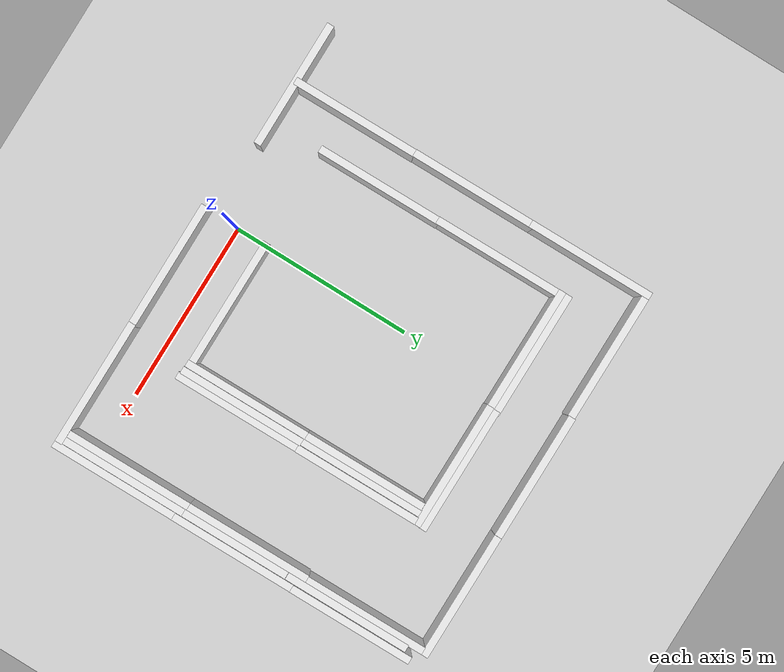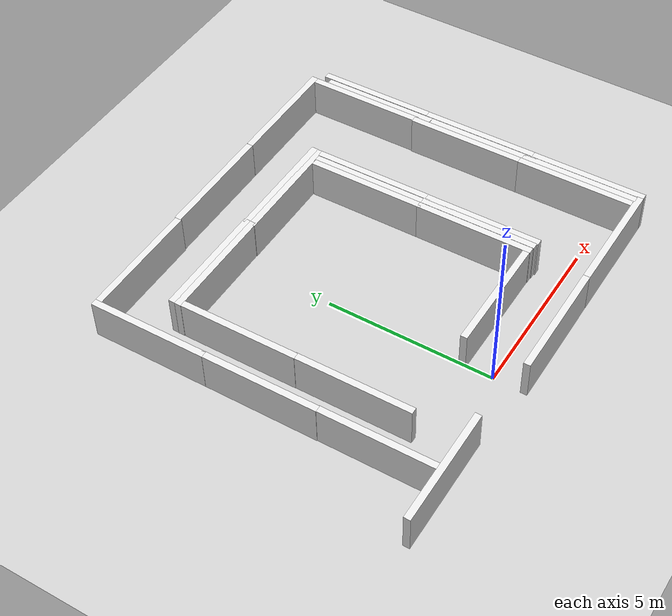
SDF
<?xml version="1.0" ?>

<sdf version="1.6">
  <world name="empty">
    <physics name="1ms" type="ignored">
      <max_step_size>0.001</max_step_size>
      <real_time_factor>1.0</real_time_factor>
    </physics>
    <plugin
      filename="gz-sim-physics-system"
      name="gz::sim::systems::Physics">
    </plugin>
    <plugin
      filename="gz-sim-user-commands-system"
      name="gz::sim::systems::UserCommands">
    </plugin>
    <plugin
      filename="gz-sim-scene-broadcaster-system"
      name="gz::sim::systems::SceneBroadcaster">
    </plugin>
    <plugin
      filename="gz-sim-contact-system"
      name="gz::sim::systems::Contact">
    </plugin>

    <plugin
      filename="gz-sim-sensors-system"
      name="gz::sim::systems::Sensors">
      <render_engine>ogre2</render_engine>
    </plugin>
    <plugin
      filename="gz-sim-imu-system"
      name="gz::sim::systems::Imu">
    </plugin>
    <plugin
      filename="gz-sim-navsat-system"
      name="gz::sim::systems::NavSat">
    </plugin>
    <!-- Set the coordinates for the world origin -->
    <spherical_coordinates>
      <surface_model>EARTH_WGS84</surface_model>
      <world_frame_orientation>ENU</world_frame_orientation>
      <latitude_deg>47.478950</latitude_deg>
      <longitude_deg>19.057785</longitude_deg>
      <elevation>0</elevation>
      <heading_deg>0</heading_deg>
    </spherical_coordinates>

    <light type="directional" name="sun">
      <cast_shadows>true</cast_shadows>
      <pose>0 0 10 0 0 0</pose>
      <diffuse>0.8 0.8 0.8 1</diffuse>
      <specular>0.2 0.2 0.2 1</specular>
      <attenuation>
        <range>1000</range>
        <constant>0.9</constant>
        <linear>0.01</linear>
        <quadratic>0.001</quadratic>
      </attenuation>
      <direction>-0.5 0.1 -0.9</direction>
    </light>

    <gravity>0 0 -9.8000000000000007</gravity>
    <magnetic_field>5.5644999999999998e-06 2.2875799999999999e-05 -4.2388400000000002e-05</magnetic_field>
    <atmosphere type='adiabatic'/>
    <scene>
      <ambient>0.400000006 0.400000006 0.400000006 1</ambient>
      <background>0.699999988 0.699999988 0.699999988 1</background>
      <shadows>true</shadows>
    </scene>

    <model name="ground_plane">
      <static>true</static>
      <link name="link">
        <collision name="collision">
          <geometry>
            <plane>
              <normal>0 0 1</normal>
              <size>100 100</size>
            </plane>
          </geometry>
          <surface>
            <friction>
              <ode>
                <mu>50</mu>
              </ode>
            </friction>
            <bounce/>
            <contact/>
          </surface>
        </collision>
        <visual name="visual">
          <geometry>
            <plane>
              <normal>0 0 1</normal>
              <size>100 100</size>
            </plane>
          </geometry>
          <material>
            <ambient>0.8 0.8 0.8 1</ambient>
            <diffuse>0.8 0.8 0.8 1</diffuse>
            <specular>0.8 0.8 0.8 1</specular>
          </material>
        </visual>
      </link>
    </model>
    <model name='grey_wall_1'>
      <static>true</static>
      <link name='link'>
        <pose>0 0 1.3999999999999999 0 0 0</pose>
        <collision name='collision'>
          <geometry>
            <box>
              <size>3.5 0.20000000000000001 1.2</size>
            </box>
          </geometry>
          <surface>
            <friction>
              <ode/>
            </friction>
            <bounce/>
            <contact/>
          </surface>
        </collision>
        <visual name='visual'>
          <cast_shadows>false</cast_shadows>
          <geometry>
            <box>
              <size>3.5 0.20000000000000001 1.2</size>
            </box>
          </geometry>
          <material>
            <ambient>0.800000012 0.800000012 0.800000012 1</ambient>
            <diffuse>0.899999976 0.899999976 0.899999976 1</diffuse>
            <specular>0.100000001 0.100000001 0.100000001 1</specular>
          </material>
        </visual>
      </link>
      <pose>5.1656638094872669 -0.89525418829218406 -0.79650002717971802 0 0 0</pose>
      <self_collide>false</self_collide>
    </model>
    <model name='grey_wall_2'>
      <static>true</static>
      <link name='link'>
        <pose>0 0 1.3999999999999999 0 0 0</pose>
        <collision name='collision'>
          <geometry>
            <box>
              <size>3.5 0.20000000000000001 1.2</size>
            </box>
          </geometry>
          <surface>
            <friction>
              <ode/>
            </friction>
            <bounce/>
            <contact/>
          </surface>
        </collision>
        <visual name='visual'>
          <cast_shadows>false</cast_shadows>
          <geometry>
            <box>
              <size>3.5 0.20000000000000001 1.2</size>
            </box>
          </geometry>
          <material>
            <ambient>0.800000012 0.800000012 0.800000012 1</ambient>
            <diffuse>0.899999976 0.899999976 0.899999976 1</diffuse>
            <specular>0.100000001 0.100000001 0.100000001 1</specular>
          </material>
        </visual>
      </link>
      <pose>1.6882715194020816 0.88620328823797312 -0.79650002717971802 0 0 0</pose>
      <self_collide>false</self_collide>
    </model>
    <model name='grey_wall_3'>
      <static>true</static>
      <link name='link'>
        <pose>0 0 1.3999999999999999 0 0 0</pose>
        <collision name='collision'>
          <geometry>
            <box>
              <size>3.5 0.20000000000000001 1.2</size>
            </box>
          </geometry>
          <surface>
            <friction>
              <ode/>
            </friction>
            <bounce/>
            <contact/>
          </surface>
        </collision>
        <visual name='visual'>
          <cast_shadows>false</cast_shadows>
          <geometry>
            <box>
              <size>3.5 0.20000000000000001 1.2</size>
            </box>
          </geometry>
          <material>
            <ambient>0.800000012 0.800000012 0.800000012 1</ambient>
            <diffuse>0.899999976 0.899999976 0.899999976 1</diffuse>
            <specular>0.100000001 0.100000001 0.100000001 1</specular>
          </material>
        </visual>
      </link>
      <pose>1.7170979027507753 -0.89997675056831605 -0.79650002717971802 0 0 0.0031365398844228468</pose>
      <self_collide>false</self_collide>
    </model>
    <model name='grey_wall_4'>
      <static>true</static>
      <link name='link'>
        <pose>0 0 1.3999999999999999 0 0 0</pose>
        <collision name='collision'>
          <geometry>
            <box>
              <size>3.5 0.20000000000000001 1.2</size>
            </box>
          </geometry>
          <surface>
            <friction>
              <ode/>
            </friction>
            <bounce/>
            <contact/>
          </surface>
        </collision>
        <visual name='visual'>
          <cast_shadows>false</cast_shadows>
          <geometry>
            <box>
              <size>3.5 0.20000000000000001 1.2</size>
            </box>
          </geometry>
          <material>
            <ambient>0.800000012 0.800000012 0.800000012 1</ambient>
            <diffuse>0.899999976 0.899999976 0.899999976 1</diffuse>
            <specular>0.100000001 0.100000001 0.100000001 1</specular>
          </material>
        </visual>
      </link>
      <pose>3.521831637143559 2.5270021740473432 -0.79650002717971802 0 0 1.5797899017080024</pose>
      <self_collide>false</self_collide>
    </model>
    <model name='grey_wall_5'>
      <static>true</static>
      <link name='link'>
        <pose>0 0 1.3999999999999999 0 0 0</pose>
        <collision name='collision'>
          <geometry>
            <box>
              <size>3.5 0.20000000000000001 1.2</size>
            </box>
          </geometry>
          <surface>
            <friction>
              <ode/>
            </friction>
            <bounce/>
            <contact/>
          </surface>
        </collision>
        <visual name='visual'>
          <cast_shadows>false</cast_shadows>
          <geometry>
            <box>
              <size>3.5 0.20000000000000001 1.2</size>
            </box>
          </geometry>
          <material>
            <ambient>0.800000012 0.800000012 0.800000012 1</ambient>
            <diffuse>0.899999976 0.899999976 0.899999976 1</diffuse>
            <specular>0.100000001 0.100000001 0.100000001 1</specular>
          </material>
        </visual>
      </link>
      <pose>6.9780288436318285 0.75720864567960167 -0.79650002717971802 0 0 1.5797899017080024</pose>
      <self_collide>false</self_collide>
    </model>
    <model name='grey_wall_6'>
      <static>true</static>
      <link name='link'>
        <pose>0 0 1.3999999999999999 0 0 0</pose>
        <collision name='collision'>
          <geometry>
            <box>
              <size>3.5 0.20000000000000001 1.2</size>
            </box>
          </geometry>
          <surface>
            <friction>
              <ode/>
            </friction>
            <bounce/>
            <contact/>
          </surface>
        </collision>
        <visual name='visual'>
          <cast_shadows>false</cast_shadows>
          <geometry>
            <box>
              <size>3.5 0.20000000000000001 1.2</size>
            </box>
          </geometry>
          <material>
            <ambient>0.800000012 0.800000012 0.800000012 1</ambient>
            <diffuse>0.899999976 0.899999976 0.899999976 1</diffuse>
            <specular>0.100000001 0.100000001 0.100000001 1</specular>
          </material>
        </visual>
      </link>
      <pose>6.9503072214789245 4.211480366024178 -0.79650002717971802 0 0 1.5797899017080024</pose>
      <self_collide>false</self_collide>
    </model>
    <model name='grey_wall_7'>
      <static>true</static>
      <link name='link'>
        <pose>0 0 1.3999999999999999 0 0 0</pose>
        <collision name='collision'>
          <geometry>
            <box>
              <size>3.5 0.20000000000000001 1.2</size>
            </box>
          </geometry>
          <surface>
            <friction>
              <ode/>
            </friction>
            <bounce/>
            <contact/>
          </surface>
        </collision>
        <visual name='visual'>
          <cast_shadows>false</cast_shadows>
          <geometry>
            <box>
              <size>3.5 0.20000000000000001 1.2</size>
            </box>
          </geometry>
          <material>
            <ambient>0.800000012 0.800000012 0.800000012 1</ambient>
            <diffuse>0.899999976 0.899999976 0.899999976 1</diffuse>
            <specular>0.100000001 0.100000001 0.100000001 1</specular>
          </material>
        </visual>
      </link>
      <pose>3.4914885092167935 5.9361764839907645 -0.79650002717971802 0 0 1.5797899017080024</pose>
      <self_collide>false</self_collide>
    </model>
    <model name='grey_wall_8'>
      <static>true</static>
      <link name='link'>
        <pose>0 0 1.3999999999999999 0 0 0</pose>
        <collision name='collision'>
          <geometry>
            <box>
              <size>3.5 0.20000000000000001 1.2</size>
            </box>
          </geometry>
          <surface>
            <friction>
              <ode/>
            </friction>
            <bounce/>
            <contact/>
          </surface>
        </collision>
        <visual name='visual'>
          <cast_shadows>false</cast_shadows>
          <geometry>
            <box>
              <size>3.5 0.20000000000000001 1.2</size>
            </box>
          </geometry>
          <material>
            <ambient>0.800000012 0.800000012 0.800000012 1</ambient>
            <diffuse>0.899999976 0.899999976 0.899999976 1</diffuse>
            <specular>0.100000001 0.100000001 0.100000001 1</specular>
          </material>
        </visual>
      </link>
      <pose>6.9236139831597887 7.6762318874897897 -0.79650002717971802 0 0 1.5797899017080024</pose>
      <self_collide>false</self_collide>
    </model>
    <model name='grey_wall_9'>
      <static>true</static>
      <link name='link'>
        <pose>0 0 1.3999999999999999 0 0 0</pose>
        <collision name='collision'>
          <geometry>
            <box>
              <size>3.5 0.20000000000000001 1.2</size>
            </box>
          </geometry>
          <surface>
            <friction>
              <ode/>
            </friction>
            <bounce/>
            <contact/>
          </surface>
        </collision>
        <visual name='visual'>
          <cast_shadows>false</cast_shadows>
          <geometry>
            <box>
              <size>3.5 0.20000000000000001 1.2</size>
            </box>
          </geometry>
          <material>
            <ambient>0.800000012 0.800000012 0.800000012 1</ambient>
            <diffuse>0.899999976 0.899999976 0.899999976 1</diffuse>
            <specular>0.100000001 0.100000001 0.100000001 1</specular>
          </material>
        </visual>
      </link>
      <pose>3.7273569803112894 2.5117239405565872 -0.79650002717971802 0 0 1.5797899017080024</pose>
      <self_collide>false</self_collide>
    </model>
    <model name='grey_wall_10'>
      <static>true</static>
      <link name='link'>
        <pose>0 0 1.3999999999999999 0 0 0</pose>
        <collision name='collision'>
          <geometry>
            <box>
              <size>3.5 0.20000000000000001 1.2</size>
            </box>
          </geometry>
          <surface>
            <friction>
              <ode/>
            </friction>
            <bounce/>
            <contact/>
          </surface>
        </collision>
        <visual name='visual'>
          <cast_shadows>false</cast_shadows>
          <geometry>
            <box>
              <size>3.5 0.20000000000000001 1.2</size>
            </box>
          </geometry>
          <material>
            <ambient>0.800000012 0.800000012 0.800000012 1</ambient>
            <diffuse>0.899999976 0.899999976 0.899999976 1</diffuse>
            <specular>0.100000001 0.100000001 0.100000001 1</specular>
          </material>
        </visual>
      </link>
      <pose>3.6702869499023638 5.9562257604994588 -0.79650002717971802 0 0 1.5797899017080024</pose>
      <self_collide>false</self_collide>
    </model>
    <model name='grey_wall_11'>
      <static>true</static>
      <link name='link'>
        <pose>0 0 1.3999999999999999 0 0 0</pose>
        <collision name='collision'>
          <geometry>
            <box>
              <size>3.5 0.20000000000000001 1.2</size>
            </box>
          </geometry>
          <surface>
            <friction>
              <ode/>
            </friction>
            <bounce/>
            <contact/>
          </surface>
        </collision>
        <visual name='visual'>
          <cast_shadows>false</cast_shadows>
          <geometry>
            <box>
              <size>3.5 0.20000000000000001 1.2</size>
            </box>
          </geometry>
          <material>
            <ambient>0.800000012 0.800000012 0.800000012 1</ambient>
            <diffuse>0.899999976 0.899999976 0.899999976 1</diffuse>
            <specular>0.100000001 0.100000001 0.100000001 1</specular>
          </material>
        </visual>
      </link>
      <pose>3.9068985825459634 2.4771023106451944 -0.79650002717971802 0 0 1.5797899017080024</pose>
      <self_collide>false</self_collide>
    </model>
    <model name='grey_wall_12'>
      <static>true</static>
      <link name='link'>
        <pose>0 0 1.3999999999999999 0 0 0</pose>
        <collision name='collision'>
          <geometry>
            <box>
              <size>3.5 0.20000000000000001 1.2</size>
            </box>
          </geometry>
          <surface>
            <friction>
              <ode/>
            </friction>
            <bounce/>
            <contact/>
          </surface>
        </collision>
        <visual name='visual'>
          <cast_shadows>false</cast_shadows>
          <geometry>
            <box>
              <size>3.5 0.20000000000000001 1.2</size>
            </box>
          </geometry>
          <material>
            <ambient>0.800000012 0.800000012 0.800000012 1</ambient>
            <diffuse>0.899999976 0.899999976 0.899999976 1</diffuse>
            <specular>0.100000001 0.100000001 0.100000001 1</specular>
          </material>
        </visual>
      </link>
      <pose>3.8806576114981235 5.9783411956893611 -0.79650002717971802 0 0 1.5797899017080024</pose>
      <self_collide>false</self_collide>
    </model>
    <model name='grey_wall_13'>
      <static>true</static>
      <link name='link'>
        <pose>0 0 1.3999999999999999 0 0 0</pose>
        <collision name='collision'>
          <geometry>
            <box>
              <size>3.5 0.20000000000000001 1.2</size>
            </box>
          </geometry>
          <surface>
            <friction>
              <ode/>
            </friction>
            <bounce/>
            <contact/>
          </surface>
        </collision>
        <visual name='visual'>
          <cast_shadows>false</cast_shadows>
          <geometry>
            <box>
              <size>3.5 0.20000000000000001 1.2</size>
            </box>
          </geometry>
          <material>
            <ambient>0.800000012 0.800000012 0.800000012 1</ambient>
            <diffuse>0.899999976 0.899999976 0.899999976 1</diffuse>
            <specular>0.100000001 0.100000001 0.100000001 1</specular>
          </material>
        </visual>
      </link>
      <pose>6.7722068895490164 0.92519141544699135 -0.79650002717971802 0 0 1.5797899017080024</pose>
      <self_collide>false</self_collide>
    </model>
    <model name='grey_wall_14'>
      <static>true</static>
      <link name='link'>
        <pose>0 0 1.3999999999999999 0 0 0</pose>
        <collision name='collision'>
          <geometry>
            <box>
              <size>3.5 0.20000000000000001 1.2</size>
            </box>
          </geometry>
          <surface>
            <friction>
              <ode/>
            </friction>
            <bounce/>
            <contact/>
          </surface>
        </collision>
        <visual name='visual'>
          <cast_shadows>false</cast_shadows>
          <geometry>
            <box>
              <size>3.5 0.20000000000000001 1.2</size>
            </box>
          </geometry>
          <material>
            <ambient>0.800000012 0.800000012 0.800000012 1</ambient>
            <diffuse>0.899999976 0.899999976 0.899999976 1</diffuse>
            <specular>0.100000001 0.100000001 0.100000001 1</specular>
          </material>
        </visual>
      </link>
      <pose>6.7432948967610518 3.9427501308672297 -0.79650002717971802 0 0 1.5797899017080024</pose>
      <self_collide>false</self_collide>
    </model>
    <model name='grey_wall_15'>
      <static>true</static>
      <link name='link'>
        <pose>0 0 1.3999999999999999 0 0 0</pose>
        <collision name='collision'>
          <geometry>
            <box>
              <size>3.5 0.20000000000000001 1.2</size>
            </box>
          </geometry>
          <surface>
            <friction>
              <ode/>
            </friction>
            <bounce/>
            <contact/>
          </surface>
        </collision>
        <visual name='visual'>
          <cast_shadows>false</cast_shadows>
          <geometry>
            <box>
              <size>3.5 0.20000000000000001 1.2</size>
            </box>
          </geometry>
          <material>
            <ambient>0.800000012 0.800000012 0.800000012 1</ambient>
            <diffuse>0.899999976 0.899999976 0.899999976 1</diffuse>
            <specular>0.100000001 0.100000001 0.100000001 1</specular>
          </material>
        </visual>
      </link>
      <pose>6.7099269190659978 7.4506081681151493 -0.79650002717971802 0 0 1.5797899017080024</pose>
      <self_collide>false</self_collide>
    </model>
    <model name='grey_wall_16'>
      <static>true</static>
      <link name='link'>
        <pose>0 0 1.3999999999999999 0 0 0</pose>
        <collision name='collision'>
          <geometry>
            <box>
              <size>3.5 0.20000000000000001 1.2</size>
            </box>
          </geometry>
          <surface>
            <friction>
              <ode/>
            </friction>
            <bounce/>
            <contact/>
          </surface>
        </collision>
        <visual name='visual'>
          <cast_shadows>false</cast_shadows>
          <geometry>
            <box>
              <size>3.5 0.20000000000000001 1.2</size>
            </box>
          </geometry>
          <material>
            <ambient>0.800000012 0.800000012 0.800000012 1</ambient>
            <diffuse>0.899999976 0.899999976 0.899999976 1</diffuse>
            <specular>0.100000001 0.100000001 0.100000001 1</specular>
          </material>
        </visual>
      </link>
      <pose>6.5758289455464709 0.95628041037775535 -0.79650002717971802 0 0 1.5797899017080024</pose>
      <self_collide>false</self_collide>
    </model>
    <model name='grey_wall_17'>
      <static>true</static>
      <link name='link'>
        <pose>0 0 1.3999999999999999 0 0 0</pose>
        <collision name='collision'>
          <geometry>
            <box>
              <size>3.5 0.20000000000000001 1.2</size>
            </box>
          </geometry>
          <surface>
            <friction>
              <ode/>
            </friction>
            <bounce/>
            <contact/>
          </surface>
        </collision>
        <visual name='visual'>
          <cast_shadows>false</cast_shadows>
          <geometry>
            <box>
              <size>3.5 0.20000000000000001 1.2</size>
            </box>
          </geometry>
          <material>
            <ambient>0.800000012 0.800000012 0.800000012 1</ambient>
            <diffuse>0.899999976 0.899999976 0.899999976 1</diffuse>
            <specular>0.100000001 0.100000001 0.100000001 1</specular>
          </material>
        </visual>
      </link>
      <pose>6.5453374079758788 4.4264452306406588 -0.79650002717971802 0 0 1.5797899017080024</pose>
      <self_collide>false</self_collide>
    </model>
    <model name='grey_wall_18'>
      <static>true</static>
      <link name='link'>
        <pose>0 0 1.3999999999999999 0 0 0</pose>
        <collision name='collision'>
          <geometry>
            <box>
              <size>3.5 0.20000000000000001 1.2</size>
            </box>
          </geometry>
          <surface>
            <friction>
              <ode/>
            </friction>
            <bounce/>
            <contact/>
          </surface>
        </collision>
        <visual name='visual'>
          <cast_shadows>false</cast_shadows>
          <geometry>
            <box>
              <size>3.5 0.20000000000000001 1.2</size>
            </box>
          </geometry>
          <material>
            <ambient>0.800000012 0.800000012 0.800000012 1</ambient>
            <diffuse>0.899999976 0.899999976 0.899999976 1</diffuse>
            <specular>0.100000001 0.100000001 0.100000001 1</specular>
          </material>
        </visual>
      </link>
      <pose>6.5403673366322828 7.8334372755448616 -0.79650002717971802 0 0 1.5797899017080024</pose>
      <self_collide>false</self_collide>
    </model>
    <model name='grey_wall_1_1'>
      <static>true</static>
      <link name='link'>
        <pose>0 0 1.3999999999999999 0 0 0</pose>
        <collision name='collision'>
          <geometry>
            <box>
              <size>3.5 0.20000000000000001 1.2</size>
            </box>
          </geometry>
          <surface>
            <friction>
              <ode/>
            </friction>
            <bounce/>
            <contact/>
          </surface>
        </collision>
        <visual name='visual'>
          <cast_shadows>false</cast_shadows>
          <geometry>
            <box>
              <size>3.5 0.20000000000000001 1.2</size>
            </box>
          </geometry>
          <material>
            <ambient>0.800000012 0.800000012 0.800000012 1</ambient>
            <diffuse>0.899999976 0.899999976 0.899999976 1</diffuse>
            <specular>0.100000001 0.100000001 0.100000001 1</specular>
          </material>
        </visual>
      </link>
      <pose>2.2101724610336104 7.7901889909052269 -0.79650002717971802 0 0 0</pose>
      <self_collide>false</self_collide>
    </model>
    <model name='grey_wall_1_2'>
      <static>true</static>
      <link name='link'>
        <pose>0 0 1.3999999999999999 0 0 0</pose>
        <collision name='collision'>
          <geometry>
            <box>
              <size>3.5 0.20000000000000001 1.2</size>
            </box>
          </geometry>
          <surface>
            <friction>
              <ode/>
            </friction>
            <bounce/>
            <contact/>
          </surface>
        </collision>
        <visual name='visual'>
          <cast_shadows>false</cast_shadows>
          <geometry>
            <box>
              <size>3.5 0.20000000000000001 1.2</size>
            </box>
          </geometry>
          <material>
            <ambient>0.800000012 0.800000012 0.800000012 1</ambient>
            <diffuse>0.899999976 0.899999976 0.899999976 1</diffuse>
            <specular>0.100000001 0.100000001 0.100000001 1</specular>
          </material>
        </visual>
      </link>
      <pose>2.2203922422002136 7.9678607058810069 -0.79650002717971802 0 0 0</pose>
      <self_collide>false</self_collide>
    </model>
    <model name='grey_wall_1_3'>
      <static>true</static>
      <link name='link'>
        <pose>0 0 1.3999999999999999 0 0 0</pose>
        <collision name='collision'>
          <geometry>
            <box>
              <size>3.5 0.20000000000000001 1.2</size>
            </box>
          </geometry>
          <surface>
            <friction>
              <ode/>
            </friction>
            <bounce/>
            <contact/>
          </surface>
        </collision>
        <visual name='visual'>
          <cast_shadows>false</cast_shadows>
          <geometry>
            <box>
              <size>3.5 0.20000000000000001 1.2</size>
            </box>
          </geometry>
          <material>
            <ambient>0.800000012 0.800000012 0.800000012 1</ambient>
            <diffuse>0.899999976 0.899999976 0.899999976 1</diffuse>
            <specular>0.100000001 0.100000001 0.100000001 1</specular>
          </material>
        </visual>
      </link>
      <pose>4.8737506779517012 9.6634462764366589 -0.79650002717971802 0 0 0</pose>
      <self_collide>false</self_collide>
    </model>
    <model name='grey_wall_1_4'>
      <static>true</static>
      <link name='link'>
        <pose>0 0 1.3999999999999999 0 0 0</pose>
        <collision name='collision'>
          <geometry>
            <box>
              <size>3.5 0.20000000000000001 1.2</size>
            </box>
          </geometry>
          <surface>
            <friction>
              <ode/>
            </friction>
            <bounce/>
            <contact/>
          </surface>
        </collision>
        <visual name='visual'>
          <cast_shadows>false</cast_shadows>
          <geometry>
            <box>
              <size>3.5 0.20000000000000001 1.2</size>
            </box>
          </geometry>
          <material>
            <ambient>0.800000012 0.800000012 0.800000012 1</ambient>
            <diffuse>0.899999976 0.899999976 0.899999976 1</diffuse>
            <specular>0.100000001 0.100000001 0.100000001 1</specular>
          </material>
        </visual>
      </link>
      <pose>1.3721167170887201 9.6638282068222576 -0.79650002717971802 0 0 0</pose>
      <self_collide>false</self_collide>
    </model>
    <model name='grey_wall_1_5'>
      <static>true</static>
      <link name='link'>
        <pose>0 0 1.3999999999999999 0 0 0</pose>
        <collision name='collision'>
          <geometry>
            <box>
              <size>3.5 0.20000000000000001 1.2</size>
            </box>
          </geometry>
          <surface>
            <friction>
              <ode/>
            </friction>
            <bounce/>
            <contact/>
          </surface>
        </collision>
        <visual name='visual'>
          <cast_shadows>false</cast_shadows>
          <geometry>
            <box>
              <size>3.5 0.20000000000000001 1.2</size>
            </box>
          </geometry>
          <material>
            <ambient>0.800000012 0.800000012 0.800000012 1</ambient>
            <diffuse>0.899999976 0.899999976 0.899999976 1</diffuse>
            <specular>0.100000001 0.100000001 0.100000001 1</specular>
          </material>
        </visual>
      </link>
      <pose>-1.1762568212014983 7.8015329165619649 -0.79650002717971802 0 0 0</pose>
      <self_collide>false</self_collide>
    </model>
    <model name='grey_wall_1_6'>
      <static>true</static>
      <link name='link'>
        <pose>0 0 1.3999999999999999 0 0 0</pose>
        <collision name='collision'>
          <geometry>
            <box>
              <size>3.5 0.20000000000000001 1.2</size>
            </box>
          </geometry>
          <surface>
            <friction>
              <ode/>
            </friction>
            <bounce/>
            <contact/>
          </surface>
        </collision>
        <visual name='visual'>
          <cast_shadows>false</cast_shadows>
          <geometry>
            <box>
              <size>3.5 0.20000000000000001 1.2</size>
            </box>
          </geometry>
          <material>
            <ambient>0.800000012 0.800000012 0.800000012 1</ambient>
            <diffuse>0.899999976 0.899999976 0.899999976 1</diffuse>
            <specular>0.100000001 0.100000001 0.100000001 1</specular>
          </material>
        </visual>
      </link>
      <pose>-1.1717593660904484 7.9914166123798323 -0.79650002717971802 0 0 0</pose>
      <self_collide>false</self_collide>
    </model>
    <model name='grey_wall_1_7'>
      <static>true</static>
      <link name='link'>
        <pose>0 0 1.3999999999999999 0 0 0</pose>
        <collision name='collision'>
          <geometry>
            <box>
              <size>3.5 0.20000000000000001 1.2</size>
            </box>
          </geometry>
          <surface>
            <friction>
              <ode/>
            </friction>
            <bounce/>
            <contact/>
          </surface>
        </collision>
        <visual name='visual'>
          <cast_shadows>false</cast_shadows>
          <geometry>
            <box>
              <size>3.5 0.20000000000000001 1.2</size>
            </box>
          </geometry>
          <material>
            <ambient>0.800000012 0.800000012 0.800000012 1</ambient>
            <diffuse>0.899999976 0.899999976 0.899999976 1</diffuse>
            <specular>0.100000001 0.100000001 0.100000001 1</specular>
          </material>
        </visual>
      </link>
      <pose>-2.1206758356157351 9.6391031898002311 -0.79650002717971802 0 0 0</pose>
      <self_collide>false</self_collide>
    </model>
    <model name='grey_wall_11_1'>
      <static>true</static>
      <link name='link'>
        <pose>0 0 1.3999999999999999 0 0 0</pose>
        <collision name='collision'>
          <geometry>
            <box>
              <size>3.5 0.20000000000000001 1.2</size>
            </box>
          </geometry>
          <surface>
            <friction>
              <ode/>
            </friction>
            <bounce/>
            <contact/>
          </surface>
        </collision>
        <visual name='visual'>
          <cast_shadows>false</cast_shadows>
          <geometry>
            <box>
              <size>3.5 0.20000000000000001 1.2</size>
            </box>
          </geometry>
          <material>
            <ambient>0.800000012 0.800000012 0.800000012 1</ambient>
            <diffuse>0.899999976 0.899999976 0.899999976 1</diffuse>
            <specular>0.100000001 0.100000001 0.100000001 1</specular>
          </material>
        </visual>
      </link>
      <pose>-2.8044883609578095 5.9615004829734248 -0.79650002717971802 0 0 1.5797899017080024</pose>
      <self_collide>false</self_collide>
    </model>
    <model name='grey_wall_11_2'>
      <static>true</static>
      <link name='link'>
        <pose>0 0 1.3999999999999999 0 0 0</pose>
        <collision name='collision'>
          <geometry>
            <box>
              <size>3.5 0.20000000000000001 1.2</size>
            </box>
          </geometry>
          <surface>
            <friction>
              <ode/>
            </friction>
            <bounce/>
            <contact/>
          </surface>
        </collision>
        <visual name='visual'>
          <cast_shadows>false</cast_shadows>
          <geometry>
            <box>
              <size>3.5 0.20000000000000001 1.2</size>
            </box>
          </geometry>
          <material>
            <ambient>0.800000012 0.800000012 0.800000012 1</ambient>
            <diffuse>0.899999976 0.899999976 0.899999976 1</diffuse>
            <specular>0.100000001 0.100000001 0.100000001 1</specular>
          </material>
        </visual>
      </link>
      <pose>-3.9557871328296805 7.9837023850469446 -0.79650002717971802 0 0 1.5797899017080024</pose>
      <self_collide>false</self_collide>
    </model>
    <model name='grey_wall_11_3'>
      <static>true</static>
      <link name='link'>
        <pose>0 0 1.3999999999999999 0 0 0</pose>
        <collision name='collision'>
          <geometry>
            <box>
              <size>3.5 0.20000000000000001 1.2</size>
            </box>
          </geometry>
          <surface>
            <friction>
              <ode/>
            </friction>
            <bounce/>
            <contact/>
          </surface>
        </collision>
        <visual name='visual'>
          <cast_shadows>false</cast_shadows>
          <geometry>
            <box>
              <size>3.5 0.20000000000000001 1.2</size>
            </box>
          </geometry>
          <material>
            <ambient>0.800000012 0.800000012 0.800000012 1</ambient>
            <diffuse>0.899999976 0.899999976 0.899999976 1</diffuse>
            <specular>0.100000001 0.100000001 0.100000001 1</specular>
          </material>
        </visual>
      </link>
      <pose>-3.9230094246317826 4.5914694362383228 -0.79650002717971802 0 0 1.5797899017080024</pose>
      <self_collide>false</self_collide>
    </model>
    <model name='grey_wall_11_4'>
      <static>true</static>
      <link name='link'>
        <pose>0 0 1.3999999999999999 0 0 0</pose>
        <collision name='collision'>
          <geometry>
            <box>
              <size>3.5 0.20000000000000001 1.2</size>
            </box>
          </geometry>
          <surface>
            <friction>
              <ode/>
            </friction>
            <bounce/>
            <contact/>
          </surface>
        </collision>
        <visual name='visual'>
          <cast_shadows>false</cast_shadows>
          <geometry>
            <box>
              <size>3.5 0.20000000000000001 1.2</size>
            </box>
          </geometry>
          <material>
            <ambient>0.800000012 0.800000012 0.800000012 1</ambient>
            <diffuse>0.899999976 0.899999976 0.899999976 1</diffuse>
            <specular>0.100000001 0.100000001 0.100000001 1</specular>
          </material>
        </visual>
      </link>
      <pose>-2.7650620010313132 2.5361783617196778 -0.79650002717971802 0 0 1.5797899017080024</pose>
      <self_collide>false</self_collide>
    </model>
    <model name='grey_wall_11_5'>
      <static>true</static>
      <link name='link'>
        <pose>0 0 1.3999999999999999 0 0 0</pose>
        <collision name='collision'>
          <geometry>
            <box>
              <size>3.5 0.20000000000000001 1.2</size>
            </box>
          </geometry>
          <surface>
            <friction>
              <ode/>
            </friction>
            <bounce/>
            <contact/>
          </surface>
        </collision>
        <visual name='visual'>
          <cast_shadows>false</cast_shadows>
          <geometry>
            <box>
              <size>3.5 0.20000000000000001 1.2</size>
            </box>
          </geometry>
          <material>
            <ambient>0.800000012 0.800000012 0.800000012 1</ambient>
            <diffuse>0.899999976 0.899999976 0.899999976 1</diffuse>
            <specular>0.100000001 0.100000001 0.100000001 1</specular>
          </material>
        </visual>
      </link>
      <pose>-3.882939819634645 1.1146747520547646 -0.79650002717971802 0 0 1.5797899017080024</pose>
      <self_collide>false</self_collide>
    </model>
    <model name='grey_wall_3_1'>
      <static>true</static>
      <link name='link'>
        <pose>0 0 1.3999999999999999 0 0 0</pose>
        <collision name='collision'>
          <geometry>
            <box>
              <size>3.5 0.20000000000000001 1.2</size>
            </box>
          </geometry>
          <surface>
            <friction>
              <ode/>
            </friction>
            <bounce/>
            <contact/>
          </surface>
        </collision>
        <visual name='visual'>
          <cast_shadows>false</cast_shadows>
          <geometry>
            <box>
              <size>3.5 0.20000000000000001 1.2</size>
            </box>
          </geometry>
          <material>
            <ambient>0.800000012 0.800000012 0.800000012 1</ambient>
            <diffuse>0.899999976 0.899999976 0.899999976 1</diffuse>
            <specular>0.100000001 0.100000001 0.100000001 1</specular>
          </material>
        </visual>
      </link>
      <pose>-3.7678478571791283 -0.61089573468671254 -0.79650002717971802 0 0 0.0031365398844228468</pose>
      <self_collide>false</self_collide>
    </model>
  </world>
</sdf>
